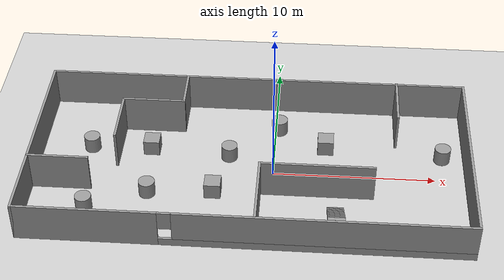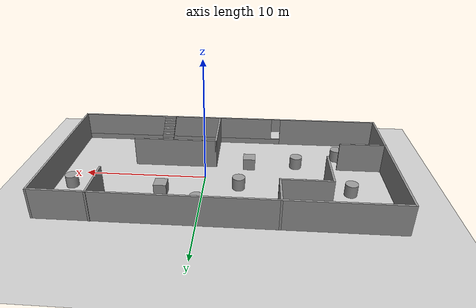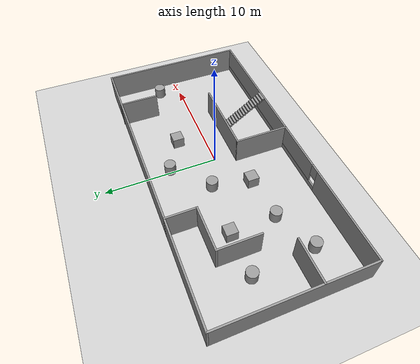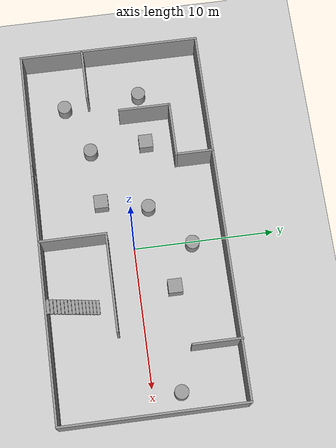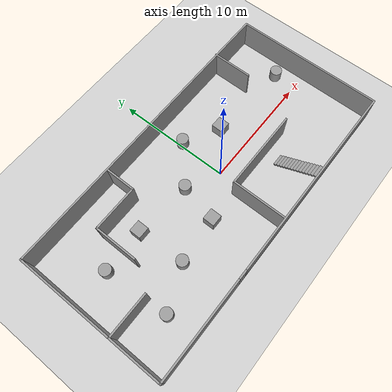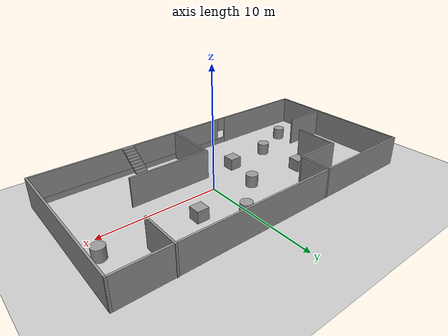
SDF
<sdf version="1.7">
 <world name="default">
  <light name="sun" type="directional">
   <pose>0 0 10 0 -0 0</pose>
   <diffuse>0.8 0.8 0.8 1</diffuse>
   <specular>0.2 0.2 0.2 1</specular>
   <attenuation>
    <range>1000</range>
    <constant>0.9</constant>
    <linear>0.01</linear>
    <quadratic>0.001</quadratic>
   </attenuation>
   <direction>-0.5 0.1 -0.9</direction>
   <spot><inner_angle>0</inner_angle><outer_angle>0</outer_angle><falloff>0</falloff></spot>
  </light>
  <model name="ground_plane">
   <static>1</static>
   <link name="link">
    <collision name="collision">
     <geometry><plane><normal>0 0 1</normal><size>100 100</size></plane></geometry>
     <surface>
      <contact><collide_bitmask>65535</collide_bitmask></contact>
      <friction><ode><mu>100</mu><mu2>50</mu2></ode></friction>
     </surface>
    </collision>
    <visual name="visual">
     <cast_shadows>0</cast_shadows>
     <geometry><plane><normal>0 0 1</normal><size>100 100</size></plane></geometry>
     <material>
      <script><uri>file://media/materials/scripts/gazebo.material</uri><name>Gazebo/Grey</name></script>
     </material>
    </visual>
   </link>
  </model>
  <gravity>0 0 -9.8</gravity>
  <magnetic_field>6e-06 2.3e-05 -4.2e-05</magnetic_field>
  <atmosphere type="adiabatic"/>
  <physics type="ode">
   <max_step_size>0.001</max_step_size>
   <real_time_factor>1</real_time_factor>
   <real_time_update_rate>1000</real_time_update_rate>
  </physics>
  <scene><ambient>0.4 0.4 0.4 1</ambient><background>0.7 0.7 0.7 1</background><shadows>1</shadows></scene>
  <audio><device>default</device></audio>
  <spherical_coordinates>
   <surface_model>EARTH_WGS84</surface_model>
   <latitude_deg>0</latitude_deg>
   <longitude_deg>0</longitude_deg>
   <elevation>0</elevation>
   <heading_deg>0</heading_deg>
  </spherical_coordinates>
  <model name="Untitled">
   <pose>-1.38743 -0.03036 0 0 -0 0</pose>
   <link name="Stairs_0">
    <visual name="Stairs_0_Visual_0">
     <pose>5.27395 -2.98954 0.083333 0 -0 0</pose>
     <geometry><box><size>1 0.233333 0.166667</size></box></geometry>
     <material>
      <script><uri>file://media/materials/scripts/gazebo.material</uri><name>Gazebo/Grey</name></script>
      <ambient>1 1 1 1</ambient>
     </material>
     <meta><layer>0</layer></meta>
    </visual>
    <collision name="Stairs_0_Collision_0">
     <geometry><box><size>1 0.233333 0.166667</size></box></geometry>
     <pose>5.27395 -2.98954 0.083333 0 -0 0</pose>
    </collision>
    <visual name="Stairs_0_Visual_1">
     <pose>5.27395 -3.22287 0.25 0 -0 0</pose>
     <geometry><box><size>1 0.233333 0.166667</size></box></geometry>
     <material>
      <script><uri>file://media/materials/scripts/gazebo.material</uri><name>Gazebo/Grey</name></script>
      <ambient>1 1 1 1</ambient>
     </material>
     <meta><layer>0</layer></meta>
    </visual>
    <collision name="Stairs_0_Collision_1">
     <geometry><box><size>1 0.233333 0.166667</size></box></geometry>
     <pose>5.27395 -3.22287 0.25 0 -0 0</pose>
    </collision>
    <visual name="Stairs_0_Visual_2">
     <pose>5.27395 -3.4562 0.416667 0 -0 0</pose>
     <geometry><box><size>1 0.233333 0.166667</size></box></geometry>
     <material>
      <script><uri>file://media/materials/scripts/gazebo.material</uri><name>Gazebo/Grey</name></script>
      <ambient>1 1 1 1</ambient>
     </material>
     <meta><layer>0</layer></meta>
    </visual>
    <collision name="Stairs_0_Collision_2">
     <geometry><box><size>1 0.233333 0.166667</size></box></geometry>
     <pose>5.27395 -3.4562 0.416667 0 -0 0</pose>
    </collision>
    <visual name="Stairs_0_Visual_3">
     <pose>5.27395 -3.68954 0.583333 0 -0 0</pose>
     <geometry><box><size>1 0.233333 0.166667</size></box></geometry>
     <material>
      <script><uri>file://media/materials/scripts/gazebo.material</uri><name>Gazebo/Grey</name></script>
      <ambient>1 1 1 1</ambient>
     </material>
     <meta><layer>0</layer></meta>
    </visual>
    <collision name="Stairs_0_Collision_3">
     <geometry><box><size>1 0.233333 0.166667</size></box></geometry>
     <pose>5.27395 -3.68954 0.583333 0 -0 0</pose>
    </collision>
    <visual name="Stairs_0_Visual_4">
     <pose>5.27395 -3.92287 0.75 0 -0 0</pose>
     <geometry><box><size>1 0.233333 0.166667</size></box></geometry>
     <material>
      <script><uri>file://media/materials/scripts/gazebo.material</uri><name>Gazebo/Grey</name></script>
      <ambient>1 1 1 1</ambient>
     </material>
     <meta><layer>0</layer></meta>
    </visual>
    <collision name="Stairs_0_Collision_4">
     <geometry><box><size>1 0.233333 0.166667</size></box></geometry>
     <pose>5.27395 -3.92287 0.75 0 -0 0</pose>
    </collision>
    <visual name="Stairs_0_Visual_5">
     <pose>5.27395 -4.1562 0.916667 0 -0 0</pose>
     <geometry><box><size>1 0.233333 0.166667</size></box></geometry>
     <material>
      <script><uri>file://media/materials/scripts/gazebo.material</uri><name>Gazebo/Grey</name></script>
      <ambient>1 1 1 1</ambient>
     </material>
     <meta><layer>0</layer></meta>
    </visual>
    <collision name="Stairs_0_Collision_5">
     <geometry><box><size>1 0.233333 0.166667</size></box></geometry>
     <pose>5.27395 -4.1562 0.916667 0 -0 0</pose>
    </collision>
    <visual name="Stairs_0_Visual_6">
     <pose>5.27395 -4.38954 1.08333 0 -0 0</pose>
     <geometry><box><size>1 0.233333 0.166667</size></box></geometry>
     <material>
      <script><uri>file://media/materials/scripts/gazebo.material</uri><name>Gazebo/Grey</name></script>
      <ambient>1 1 1 1</ambient>
     </material>
     <meta><layer>0</layer></meta>
    </visual>
    <collision name="Stairs_0_Collision_6">
     <geometry><box><size>1 0.233333 0.166667</size></box></geometry>
     <pose>5.27395 -4.38954 1.08333 0 -0 0</pose>
    </collision>
    <visual name="Stairs_0_Visual_7">
     <pose>5.27395 -4.62287 1.25 0 -0 0</pose>
     <geometry><box><size>1 0.233333 0.166667</size></box></geometry>
     <material>
      <script><uri>file://media/materials/scripts/gazebo.material</uri><name>Gazebo/Grey</name></script>
      <ambient>1 1 1 1</ambient>
     </material>
     <meta><layer>0</layer></meta>
    </visual>
    <collision name="Stairs_0_Collision_7">
     <geometry><box><size>1 0.233333 0.166667</size></box></geometry>
     <pose>5.27395 -4.62287 1.25 0 -0 0</pose>
    </collision>
    <visual name="Stairs_0_Visual_8">
     <pose>5.27395 -4.85621 1.41667 0 -0 0</pose>
     <geometry><box><size>1 0.233333 0.166667</size></box></geometry>
     <material>
      <script><uri>file://media/materials/scripts/gazebo.material</uri><name>Gazebo/Grey</name></script>
      <ambient>1 1 1 1</ambient>
     </material>
     <meta><layer>0</layer></meta>
    </visual>
    <collision name="Stairs_0_Collision_8">
     <geometry><box><size>1 0.233333 0.166667</size></box></geometry>
     <pose>5.27395 -4.85621 1.41667 0 -0 0</pose>
    </collision>
    <visual name="Stairs_0_Visual_9">
     <pose>5.27395 -5.08954 1.58333 0 -0 0</pose>
     <geometry><box><size>1 0.233333 0.166667</size></box></geometry>
     <material>
      <script><uri>file://media/materials/scripts/gazebo.material</uri><name>Gazebo/Grey</name></script>
      <ambient>1 1 1 1</ambient>
     </material>
     <meta><layer>0</layer></meta>
    </visual>
    <collision name="Stairs_0_Collision_9">
     <geometry><box><size>1 0.233333 0.166667</size></box></geometry>
     <pose>5.27395 -5.08954 1.58333 0 -0 0</pose>
    </collision>
    <visual name="Stairs_0_Visual_10">
     <pose>5.27395 -5.32287 1.75 0 -0 0</pose>
     <geometry><box><size>1 0.233333 0.166667</size></box></geometry>
     <material>
      <script><uri>file://media/materials/scripts/gazebo.material</uri><name>Gazebo/Grey</name></script>
      <ambient>1 1 1 1</ambient>
     </material>
     <meta><layer>0</layer></meta>
    </visual>
    <collision name="Stairs_0_Collision_10">
     <geometry><box><size>1 0.233333 0.166667</size></box></geometry>
     <pose>5.27395 -5.32287 1.75 0 -0 0</pose>
    </collision>
    <visual name="Stairs_0_Visual_11">
     <pose>5.27395 -5.5562 1.91667 0 -0 0</pose>
     <geometry><box><size>1 0.233333 0.166667</size></box></geometry>
     <material>
      <script><uri>file://media/materials/scripts/gazebo.material</uri><name>Gazebo/Grey</name></script>
      <ambient>1 1 1 1</ambient>
     </material>
     <meta><layer>0</layer></meta>
    </visual>
    <collision name="Stairs_0_Collision_11">
     <geometry><box><size>1 0.233333 0.166667</size></box></geometry>
     <pose>5.27395 -5.5562 1.91667 0 -0 0</pose>
    </collision>
    <visual name="Stairs_0_Visual_12">
     <pose>5.27395 -5.78954 2.08333 0 -0 0</pose>
     <geometry><box><size>1 0.233333 0.166667</size></box></geometry>
     <material>
      <script><uri>file://media/materials/scripts/gazebo.material</uri><name>Gazebo/Grey</name></script>
      <ambient>1 1 1 1</ambient>
     </material>
     <meta><layer>0</layer></meta>
    </visual>
    <collision name="Stairs_0_Collision_12">
     <geometry><box><size>1 0.233333 0.166667</size></box></geometry>
     <pose>5.27395 -5.78954 2.08333 0 -0 0</pose>
    </collision>
    <visual name="Stairs_0_Visual_13">
     <pose>5.27395 -6.02287 2.25 0 -0 0</pose>
     <geometry><box><size>1 0.233333 0.166667</size></box></geometry>
     <material>
      <script><uri>file://media/materials/scripts/gazebo.material</uri><name>Gazebo/Grey</name></script>
      <ambient>1 1 1 1</ambient>
     </material>
     <meta><layer>0</layer></meta>
    </visual>
    <collision name="Stairs_0_Collision_13">
     <geometry><box><size>1 0.233333 0.166667</size></box></geometry>
     <pose>5.27395 -6.02287 2.25 0 -0 0</pose>
    </collision>
    <visual name="Stairs_0_Visual_14">
     <pose>5.27395 -6.2562 2.41667 0 -0 0</pose>
     <geometry><box><size>1 0.233333 0.166667</size></box></geometry>
     <material>
      <script><uri>file://media/materials/scripts/gazebo.material</uri><name>Gazebo/Grey</name></script>
      <ambient>1 1 1 1</ambient>
     </material>
     <meta><layer>0</layer></meta>
    </visual>
    <collision name="Stairs_0_Collision_14">
     <geometry><box><size>1 0.233333 0.166667</size></box></geometry>
     <pose>5.27395 -6.2562 2.41667 0 -0 0</pose>
    </collision>
   </link>
   <link name="Wall_10">
    <collision name="Wall_10_Collision">
     <geometry><box><size>26.75 0.15 2.5</size></box></geometry>
     <pose>0 0 1.25 0 -0 0</pose>
    </collision>
    <visual name="Wall_10_Visual">
     <pose>0 0 1.25 0 -0 0</pose>
     <geometry><box><size>26.75 0.15 2.5</size></box></geometry>
     <material>
      <script><uri>file://media/materials/scripts/gazebo.material</uri><name>Gazebo/Grey</name></script>
      <ambient>1 1 1 1</ambient>
     </material>
     <meta><layer>0</layer></meta>
    </visual>
    <pose>0 6.40018 0 0 -0 3.14159</pose>
   </link>
   <link name="Wall_17">
    <collision name="Wall_17_Collision">
     <geometry><box><size>2.75 0.15 2.5</size></box></geometry>
     <pose>0 0 1.25 0 -0 0</pose>
    </collision>
    <visual name="Wall_17_Visual">
     <pose>0 0 1.25 0 -0 0</pose>
     <geometry><box><size>2.75 0.15 2.5</size></box></geometry>
     <material>
      <script><uri>file://media/materials/scripts/gazebo.material</uri><name>Gazebo/Grey</name></script>
      <ambient>1 1 1 1</ambient>
     </material>
     <meta><layer>0</layer></meta>
    </visual>
    <pose>-4.49271 5.10282 0 0 -0 -1.5708</pose>
   </link>
   <link name="Wall_18">
    <collision name="Wall_18_Collision">
     <geometry><box><size>4 0.15 2.5</size></box></geometry>
     <pose>0 0 1.25 0 -0 0</pose>
    </collision>
    <visual name="Wall_18_Visual">
     <pose>0 0 1.25 0 -0 0</pose>
     <geometry><box><size>4 0.15 2.5</size></box></geometry>
     <material>
      <script><uri>file://media/materials/scripts/gazebo.material</uri><name>Gazebo/Grey</name></script>
      <ambient>1 1 1 1</ambient>
     </material>
     <meta><layer>0</layer></meta>
    </visual>
    <pose>-6.41771 3.80282 0 0 -0 3.14159</pose>
   </link>
   <link name="Wall_19">
    <collision name="Wall_19_Collision">
     <geometry><box><size>3.75 0.15 2.5</size></box></geometry>
     <pose>0 0 1.25 0 -0 0</pose>
    </collision>
    <visual name="Wall_19_Visual">
     <pose>0 0 1.25 0 -0 0</pose>
     <geometry><box><size>3.75 0.15 2.5</size></box></geometry>
     <material>
      <script><uri>file://media/materials/scripts/gazebo.material</uri><name>Gazebo/Grey</name></script>
      <ambient>1 1 1 1</ambient>
     </material>
     <meta><layer>0</layer></meta>
    </visual>
    <pose>-8.34271 2.00282 0 0 -0 -1.5708</pose>
   </link>
   <link name="Wall_21">
    <collision name="Wall_21_Collision">
     <geometry><box><size>4.75 0.15 2.5</size></box></geometry>
     <pose>0 0 1.25 0 -0 0</pose>
    </collision>
    <visual name="Wall_21_Visual">
     <pose>0 0 1.25 0 -0 0</pose>
     <geometry><box><size>4.75 0.15 2.5</size></box></geometry>
     <material>
      <script><uri>file://media/materials/scripts/gazebo.material</uri><name>Gazebo/Grey</name></script>
      <ambient>1 1 1 1</ambient>
     </material>
     <meta><layer>0</layer></meta>
    </visual>
    <pose>0.668082 -4.09078 0 0 -0 1.5708</pose>
   </link>
   <link name="Wall_22">
    <collision name="Wall_22_Collision">
     <geometry><box><size>7 0.15 2.5</size></box></geometry>
     <pose>0 0 1.25 0 -0 0</pose>
    </collision>
    <visual name="Wall_22_Visual">
     <pose>0 0 1.25 0 -0 0</pose>
     <geometry><box><size>7 0.15 2.5</size></box></geometry>
     <material>
      <script><uri>file://media/materials/scripts/gazebo.material</uri><name>Gazebo/Grey</name></script>
      <ambient>1 1 1 1</ambient>
     </material>
     <meta><layer>0</layer></meta>
    </visual>
    <pose>4.09308 -1.79078 0 0 -0 0</pose>
   </link>
   <link name="Wall_24">
    <collision name="Wall_24_Collision">
     <geometry><box><size>3.5 0.15 2.5</size></box></geometry>
     <pose>0 0 1.25 0 -0 0</pose>
    </collision>
    <visual name="Wall_24_Visual">
     <pose>0 0 1.25 0 -0 0</pose>
     <geometry><box><size>3.5 0.15 2.5</size></box></geometry>
     <material>
      <script><uri>file://media/materials/scripts/gazebo.material</uri><name>Gazebo/Grey</name></script>
      <ambient>1 1 1 1</ambient>
     </material>
     <meta><layer>0</layer></meta>
    </visual>
    <pose>9.04239 4.77482 0 0 -0 -1.5708</pose>
   </link>
   <link name="Wall_27">
    <collision name="Wall_27_Collision">
     <geometry><box><size>3.75 0.15 2.5</size></box></geometry>
     <pose>0 0 1.25 0 -0 0</pose>
    </collision>
    <visual name="Wall_27_Visual">
     <pose>0 0 1.25 0 -0 0</pose>
     <geometry><box><size>3.75 0.15 2.5</size></box></geometry>
     <material>
      <script><uri>file://media/materials/scripts/gazebo.material</uri><name>Gazebo/Grey</name></script>
      <ambient>1 1 1 1</ambient>
     </material>
     <meta><layer>0</layer></meta>
    </visual>
    <pose>-11.4774 -2.00168 0 0 -0 0</pose>
   </link>
   <link name="Wall_7">
    <collision name="Wall_7_Collision">
     <geometry><box><size>13 0.15 2.5</size></box></geometry>
     <pose>0 0 1.25 0 -0 0</pose>
    </collision>
    <visual name="Wall_7_Visual">
     <pose>0 0 1.25 0 -0 0</pose>
     <geometry><box><size>13 0.15 2.5</size></box></geometry>
     <material>
      <script><uri>file://media/materials/scripts/gazebo.material</uri><name>Gazebo/Grey</name></script>
      <ambient>1 1 1 1</ambient>
     </material>
     <meta><layer>0</layer></meta>
    </visual>
    <pose>-13.3 -0.02482 0 0 -0 -1.5708</pose>
   </link>
   <link name="Wall_8">
    <pose>0 -6.44982 0 0 -0 0</pose>
    <visual name="Wall_8_Visual_0">
     <pose>-9.13554 0 1.25 0 -0 0</pose>
     <geometry><box><size>8.47893 0.15 2.5</size></box></geometry>
     <material>
      <script><uri>file://media/materials/scripts/gazebo.material</uri><name>Gazebo/Grey</name></script>
      <ambient>1 1 1 1</ambient>
     </material>
     <meta><layer>0</layer></meta>
    </visual>
    <collision name="Wall_8_Collision_0">
     <geometry><box><size>8.47893 0.15 2.5</size></box></geometry>
     <pose>-9.13554 0 1.25 0 -0 0</pose>
    </collision>
    <visual name="Wall_8_Visual_1">
     <pose>4.23946 0 0.25 0 -0 0</pose>
     <geometry><box><size>18.2711 0.15 0.5</size></box></geometry>
     <material>
      <script><uri>file://media/materials/scripts/gazebo.material</uri><name>Gazebo/Grey</name></script>
      <ambient>1 1 1 1</ambient>
     </material>
     <meta><layer>0</layer></meta>
    </visual>
    <collision name="Wall_8_Collision_1">
     <geometry><box><size>18.2711 0.15 0.5</size></box></geometry>
     <pose>4.23946 0 0.25 0 -0 0</pose>
    </collision>
    <visual name="Wall_8_Visual_2">
     <pose>4.63946 0 1.5 0 -0 0</pose>
     <geometry><box><size>17.4711 0.15 2</size></box></geometry>
     <material>
      <script><uri>file://media/materials/scripts/gazebo.material</uri><name>Gazebo/Grey</name></script>
      <ambient>1 1 1 1</ambient>
     </material>
     <meta><layer>0</layer></meta>
    </visual>
    <collision name="Wall_8_Collision_2">
     <geometry><box><size>17.4711 0.15 2</size></box></geometry>
     <pose>4.63946 0 1.5 0 -0 0</pose>
    </collision>
    <visual name="Wall_8_Visual_3">
     <pose>-4.49607 0 1.9 0 -0 0</pose>
     <geometry><box><size>0.8 0.15 1.2</size></box></geometry>
     <material>
      <script><uri>file://media/materials/scripts/gazebo.material</uri><name>Gazebo/Grey</name></script>
      <ambient>1 1 1 1</ambient>
     </material>
     <meta><layer>0</layer></meta>
    </visual>
    <collision name="Wall_8_Collision_3">
     <geometry><box><size>0.8 0.15 1.2</size></box></geometry>
     <pose>-4.49607 0 1.9 0 -0 0</pose>
    </collision>
   </link>
   <link name="Wall_9">
    <collision name="Wall_9_Collision">
     <geometry><box><size>13 0.15 2.5</size></box></geometry>
     <pose>0 0 1.25 0 -0 0</pose>
    </collision>
    <visual name="Wall_9_Visual">
     <pose>0 0 1.25 0 -0 0</pose>
     <geometry><box><size>13 0.15 2.5</size></box></geometry>
     <material>
      <script><uri>file://media/materials/scripts/gazebo.material</uri><name>Gazebo/Grey</name></script>
      <ambient>1 1 1 1</ambient>
     </material>
     <meta><layer>0</layer></meta>
    </visual>
    <pose>13.3 -0.02482 0 0 -0 1.5708</pose>
   </link>
   <static>1</static>
  </model>
  <model name="unit_cylinder">
   <pose>-11.5341 1.7114 0.499991 -0 -0 -0</pose>
   <link name="link">
    <inertial>
     <mass>1</mass>
     <inertia><ixx>0.145833</ixx><ixy>0</ixy><ixz>0</ixz><iyy>0.145833</iyy><iyz>0</iyz><izz>0.125</izz></inertia>
    </inertial>
    <collision name="collision">
     <geometry><cylinder><radius>0.5</radius><length>1</length></cylinder></geometry>
    </collision>
    <visual name="visual">
     <geometry><cylinder><radius>0.5</radius><length>1</length></cylinder></geometry>
     <material>
      <script><name>Gazebo/Grey</name><uri>file://media/materials/scripts/gazebo.material</uri></script>
     </material>
    </visual>
   </link>
  </model>
  <model name="unit_cylinder_0">
   <pose>-2.80027 1.37414 0.499991 -0 -0 -0</pose>
   <link name="link">
    <inertial>
     <mass>1</mass>
     <inertia><ixx>0.145833</ixx><ixy>0</ixy><ixz>0</ixz><iyy>0.145833</iyy><iyz>0</iyz><izz>0.125</izz></inertia>
    </inertial>
    <collision name="collision">
     <geometry><cylinder><radius>0.5</radius><length>1</length></cylinder></geometry>
    </collision>
    <visual name="visual">
     <geometry><cylinder><radius>0.5</radius><length>1</length></cylinder></geometry>
     <material>
      <script><name>Gazebo/Grey</name><uri>file://media/materials/scripts/gazebo.material</uri></script>
     </material>
    </visual>
   </link>
  </model>
  <model name="unit_cylinder_1">
   <pose>-7.52886 -2.2637 0.499991 -0 -0 -0</pose>
   <link name="link">
    <inertial>
     <mass>1</mass>
     <inertia><ixx>0.145833</ixx><ixy>0</ixy><ixz>0</ixz><iyy>0.145833</iyy><iyz>0</iyz><izz>0.125</izz></inertia>
    </inertial>
    <collision name="collision">
     <geometry><cylinder><radius>0.5</radius><length>1</length></cylinder></geometry>
    </collision>
    <visual name="visual">
     <geometry><cylinder><radius>0.5</radius><length>1</length></cylinder></geometry>
     <material>
      <script><name>Gazebo/Grey</name><uri>file://media/materials/scripts/gazebo.material</uri></script>
     </material>
    </visual>
   </link>
  </model>
  <model name="unit_cylinder_2">
   <pose>10.5169 1.96511 0.499991 -0 -0 -0</pose>
   <link name="link">
    <inertial>
     <mass>1</mass>
     <inertia><ixx>0.145833</ixx><ixy>0</ixy><ixz>0</ixz><iyy>0.145833</iyy><iyz>0</iyz><izz>0.125</izz></inertia>
    </inertial>
    <collision name="collision">
     <geometry><cylinder><radius>0.5</radius><length>1</length></cylinder></geometry>
    </collision>
    <visual name="visual">
     <geometry><cylinder><radius>0.5</radius><length>1</length></cylinder></geometry>
     <material>
      <script><name>Gazebo/Grey</name><uri>file://media/materials/scripts/gazebo.material</uri></script>
     </material>
    </visual>
   </link>
  </model>
  <model name="unit_box">
   <pose>3.214 2.48861 0.499995 1e-05 -0 1.1e-05</pose>
   <link name="link">
    <inertial>
     <mass>1</mass>
     <inertia>
      <ixx>0.166667</ixx>
      <ixy>0</ixy>
      <ixz>0</ixz>
      <iyy>0.166667</iyy>
      <iyz>0</iyz>
      <izz>0.166667</izz>
     </inertia>
    </inertial>
    <collision name="collision"><geometry><box><size>1 1 1</size></box></geometry></collision>
    <visual name="visual">
     <geometry><box><size>1 1 1</size></box></geometry>
     <material>
      <script><name>Gazebo/Grey</name><uri>file://media/materials/scripts/gazebo.material</uri></script>
     </material>
    </visual>
   </link>
  </model>
  <model name="unit_cylinder_3">
   <pose>-11.126 -3.8006 0.499992 -0 -0 -0</pose>
   <link name="link">
    <inertial>
     <mass>1</mass>
     <inertia><ixx>0.145833</ixx><ixy>0</ixy><ixz>0</ixz><iyy>0.145833</iyy><iyz>0</iyz><izz>0.125</izz></inertia>
    </inertial>
    <collision name="collision">
     <geometry><cylinder><radius>0.5</radius><length>1</length></cylinder></geometry>
    </collision>
    <visual name="visual">
     <geometry><cylinder><radius>0.5</radius><length>1</length></cylinder></geometry>
     <material>
      <script><name>Gazebo/Grey</name><uri>file://media/materials/scripts/gazebo.material</uri></script>
     </material>
    </visual>
   </link>
  </model>
  <model name="unit_box_0">
   <pose>-7.72222 1.79485 0.499995 1e-05 -0 1.1e-05</pose>
   <link name="link">
    <inertial>
     <mass>1</mass>
     <inertia>
      <ixx>0.166667</ixx>
      <ixy>0</ixy>
      <ixz>0</ixz>
      <iyy>0.166667</iyy>
      <iyz>0</iyz>
      <izz>0.166667</izz>
     </inertia>
    </inertial>
    <collision name="collision"><geometry><box><size>1 1 1</size></box></geometry></collision>
    <visual name="visual">
     <geometry><box><size>1 1 1</size></box></geometry>
     <material>
      <script><name>Gazebo/Grey</name><uri>file://media/materials/scripts/gazebo.material</uri></script>
     </material>
    </visual>
   </link>
  </model>
  <model name="unit_cylinder_4">
   <pose>0.242085 4.12541 0.499992 -3e-06 2e-06 0</pose>
   <link name="link">
    <inertial>
     <mass>1</mass>
     <inertia><ixx>0.145833</ixx><ixy>0</ixy><ixz>0</ixz><iyy>0.145833</iyy><iyz>0</iyz><izz>0.125</izz></inertia>
    </inertial>
    <collision name="collision">
     <geometry><cylinder><radius>0.5</radius><length>1</length></cylinder></geometry>
    </collision>
    <visual name="visual">
     <geometry><cylinder><radius>0.5</radius><length>1</length></cylinder></geometry>
     <material>
      <script><name>Gazebo/Grey</name><uri>file://media/materials/scripts/gazebo.material</uri></script>
     </material>
    </visual>
   </link>
  </model>
  <model name="unit_box_1">
   <pose>-3.55526 -1.9462 0.499995 -1e-05 -0 -0</pose>
   <link name="link">
    <inertial>
     <mass>1</mass>
     <inertia>
      <ixx>0.166667</ixx>
      <ixy>0</ixy>
      <ixz>0</ixz>
      <iyy>0.166667</iyy>
      <iyz>0</iyz>
      <izz>0.166667</izz>
     </inertia>
    </inertial>
    <collision name="collision"><geometry><box><size>1 1 1</size></box></geometry></collision>
    <visual name="visual">
     <geometry><box><size>1 1 1</size></box></geometry>
     <material>
      <script><name>Gazebo/Grey</name><uri>file://media/materials/scripts/gazebo.material</uri></script>
     </material>
    </visual>
   </link>
  </model>
  <light name="user_point_light_0" type="point">
   <pose>1.15095 1.25594 1 0 -0 0</pose>
   <diffuse>0.5 0.5 0.5 1</diffuse>
   <specular>0.1 0.1 0.1 1</specular>
   <attenuation>
    <range>20</range>
    <constant>0.5</constant>
    <linear>0.01</linear>
    <quadratic>0.001</quadratic>
   </attenuation>
   <cast_shadows>0</cast_shadows>
   <direction>0 0 -1</direction>
   <spot><inner_angle>0</inner_angle><outer_angle>0</outer_angle><falloff>0</falloff></spot>
  </light>
  <light name="user_point_light_1" type="point">
   <pose>4.25517 1.11051 1 0 -0 0</pose>
   <diffuse>0.5 0.5 0.5 1</diffuse>
   <specular>0.1 0.1 0.1 1</specular>
   <attenuation>
    <range>20</range>
    <constant>0.5</constant>
    <linear>0.01</linear>
    <quadratic>0.001</quadratic>
   </attenuation>
   <cast_shadows>0</cast_shadows>
   <direction>0 0 -1</direction>
   <spot><inner_angle>0</inner_angle><outer_angle>0</outer_angle><falloff>0</falloff></spot>
  </light>
  <light name="user_point_light_2" type="point">
   <pose>-5.58089 1.15536 1 0 -0 0</pose>
   <diffuse>0.5 0.5 0.5 1</diffuse>
   <specular>0.1 0.1 0.1 1</specular>
   <attenuation>
    <range>20</range>
    <constant>0.5</constant>
    <linear>0.01</linear>
    <quadratic>0.001</quadratic>
   </attenuation>
   <cast_shadows>0</cast_shadows>
   <direction>0 0 -1</direction>
   <spot><inner_angle>0</inner_angle><outer_angle>0</outer_angle><falloff>0</falloff></spot>
  </light>
  <light name="user_point_light_3" type="point">
   <pose>-12.1895 5.50529 1 0 -0 0</pose>
   <diffuse>0.5 0.5 0.5 1</diffuse>
   <specular>0.1 0.1 0.1 1</specular>
   <attenuation>
    <range>20</range>
    <constant>0.5</constant>
    <linear>0.01</linear>
    <quadratic>0.001</quadratic>
   </attenuation>
   <cast_shadows>0</cast_shadows>
   <direction>0 0 -1</direction>
   <spot><inner_angle>0</inner_angle><outer_angle>0</outer_angle><falloff>0</falloff></spot>
  </light>
  <light name="user_point_light_4" type="point">
   <pose>-12.7617 -3.5889 1 0 -0 0</pose>
   <diffuse>0.5 0.5 0.5 1</diffuse>
   <specular>0.1 0.1 0.1 1</specular>
   <attenuation>
    <range>20</range>
    <constant>0.5</constant>
    <linear>0.01</linear>
    <quadratic>0.001</quadratic>
   </attenuation>
   <cast_shadows>0</cast_shadows>
   <direction>0 0 -1</direction>
   <spot><inner_angle>0</inner_angle><outer_angle>0</outer_angle><falloff>0</falloff></spot>
  </light>
  <light name="user_point_light_5" type="point">
   <pose>9.74483 -3.61839 1 0 -0 0</pose>
   <diffuse>0.5 0.5 0.5 1</diffuse>
   <specular>0.1 0.1 0.1 1</specular>
   <attenuation>
    <range>20</range>
    <constant>0.5</constant>
    <linear>0.01</linear>
    <quadratic>0.001</quadratic>
   </attenuation>
   <cast_shadows>0</cast_shadows>
   <direction>0 0 -1</direction>
   <spot><inner_angle>0</inner_angle><outer_angle>0</outer_angle><falloff>0</falloff></spot>
  </light>
 </world>
</sdf>
